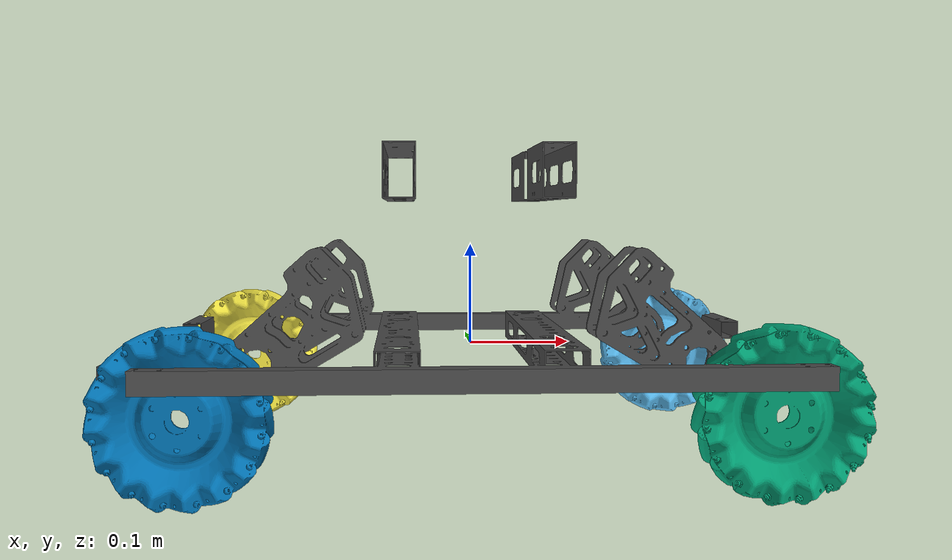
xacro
<robot xmlns:xacro="http://www.ros.org/wiki/xacro">
  <xacro:include filename="$(find rm_description)/urdf/common/mecanum_wheel.urdf.xacro"/>

  <!-- https://upload.wikimedia.org/wikipedia/commons/5/52/Wheelbase_and_Track.png -->
  <xacro:property name="wheel_track" value="0.500"/>
  <xacro:property name="wheel_base" value="0.475"/>
  <xacro:property name="wheel_offset_z" value="-0.036"/>
  <xacro:property name="wheel_joint_damping" value="1.0"/>
  <xacro:property name="wheel_joint_friction" value="1.0"/>

  <link name="base_link">
    <inertial>
      <mass value="10"/>
      <origin xyz="0 0 0"/>
      <inertia ixx="1.013" ixy="1.818e-3" ixz="5.843e-2" iyy="1.516"
               iyz="3.179e-2" izz="2.208"/>
    </inertial>
    <visual>
      <origin xyz="0 0 0" rpy="0 0 0"/>
      <geometry>
        <mesh filename="package://rm_description/meshes/hero/base.stl" scale="0.001 0.001 0.001"/>
      </geometry>
      <material name="DarkGrey"/>
    </visual>
    <collision>
      <origin xyz="0 0 0" rpy="0 0 0"/>
      <geometry>
        <mesh filename="package://rm_description/meshes/hero/base.stl" scale="0.001 0.001 0.001"/>
      </geometry>
    </collision>
  </link>

  <xacro:mecanum_wheel prefix="front_left" parent="base_link"
                       wheel_x_offset="${wheel_track/2}" wheel_y_offset="${wheel_base/2}"
                       wheel_z_offset="${wheel_offset_z}"
                       reflect="1"/>
  <xacro:mecanum_wheel prefix="front_right" parent="base_link"
                       wheel_x_offset="${wheel_track/2}" wheel_y_offset="${-wheel_base/2}"
                       wheel_z_offset="${wheel_offset_z}"
                       reflect="-1"/>
  <xacro:mecanum_wheel prefix="back_left" parent="base_link"
                       wheel_x_offset="${-wheel_track/2}" wheel_y_offset="${wheel_base/2}"
                       wheel_z_offset="${wheel_offset_z}"
                       reflect="-1"/>
  <xacro:mecanum_wheel prefix="back_right" parent="base_link"
                       wheel_x_offset="${-wheel_track/2}" wheel_y_offset="${-wheel_base/2}"
                       wheel_z_offset="${wheel_offset_z}"
                       reflect="1"/>

  <!-- Gazebo plugin for ROS Control -->
  <gazebo>
    <plugin name="gazebo_ros_control" filename="libgazebo_ros_control.so">
      <robotNamespace>/</robotNamespace>
    </plugin>
  </gazebo>

</robot>

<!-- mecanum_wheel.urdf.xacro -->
<robot xmlns:xacro="http://www.ros.org/wiki/xacro">

  <xacro:property name="wheel_radius" value="0.07625"/>
  <xacro:property name="wheel_length" value="0.0269"/>
  <xacro:property name="rotor_radius" value="0.008"/>

  <xacro:macro name="rotor" params="prefix suffix theta">
    <!--  link  -->
    <link name="${prefix}_rotor_${suffix}">
      <collision>
        <!--  still has wrong ration of rotor-->
        <geometry>
          <sphere radius="${rotor_radius}"/>
        </geometry>
      </collision>
      <inertial>
        <mass value="0.036"/>
        <inertia ixx="3128e-9" ixy="-1638.12e-9" ixz="0.0" iyy="3128e-9" iyz="0.0" izz="4766e-9"/>
      </inertial>
      <gazebo>
        <mu1>200</mu1>
        <mu2>200</mu2>
      </gazebo>
    </link>

    <joint name="${prefix}_rotor_${suffix}_joint" type="continuous">
      <origin
          xyz="${(wheel_radius-rotor_radius)*cos(theta-pi/2) * 0.70719678} 0 ${(wheel_radius-rotor_radius)*sin(theta-pi/2) * 0.70719678}"
          rpy="0 0 0"/>
      <axis xyz="${cos(theta) * 0.70719678} ${- reflect * 0.70719678} ${sin(theta) * 0.70719678}"/>
      <parent link="${prefix}_wheel"/>
      <child link="${prefix}_rotor_${suffix}"/>
    </joint>

  </xacro:macro>

  <xacro:macro name="mecanum_wheel" params="prefix parent wheel_x_offset wheel_y_offset wheel_z_offset reflect">
    <!--  link  -->
    <link name="${prefix}_wheel">
      <visual>
        <geometry>
          <xacro:if value="${reflect == 1}">
            <mesh filename="package://rm_description/meshes/common/right_threaded_mecanum_wheel.stl"
                  scale="0.001 0.001 0.001"/>
          </xacro:if>
          <xacro:if value="${reflect == -1}">
            <mesh filename="package://rm_description/meshes/common/left_threaded_mecanum_wheel.stl"
                  scale="0.001 0.001 0.001"/>
          </xacro:if>
        </geometry>
      </visual>
      <inertial>
        <mass value="0.59"/>
        <inertia ixx="1.416e-3" ixy="0.0" ixz="0.0" iyy="2.749e-3" iyz="0.0" izz="1.416e-3"/>
      </inertial>
    </link>

    <!--  joint  -->
    <joint name="${prefix}_wheel_joint" type="continuous">
      <axis xyz="0 1 0"/>
      <origin xyz="${wheel_x_offset} ${wheel_y_offset} ${wheel_offset_z}" rpy="0 0 0"/>
      <dynamics damping="0.1" friction="0.1"/>
      <parent link="${parent}"/>
      <child link="${prefix}_wheel"/>
    </joint>

    <!-- 16 rotor  2pi/16=0.393-->
    <xacro:rotor prefix="${prefix}" suffix="0" theta="${0*0.393}"/>
    <xacro:rotor prefix="${prefix}" suffix="1" theta="${1*0.393}"/>
    <xacro:rotor prefix="${prefix}" suffix="2" theta="${2*0.393}"/>
    <xacro:rotor prefix="${prefix}" suffix="3" theta="${3*0.393}"/>
    <xacro:rotor prefix="${prefix}" suffix="4" theta="${4*0.393}"/>
    <xacro:rotor prefix="${prefix}" suffix="5" theta="${5*0.393}"/>
    <xacro:rotor prefix="${prefix}" suffix="6" theta="${6*0.393}"/>
    <xacro:rotor prefix="${prefix}" suffix="7" theta="${7*0.393}"/>
    <xacro:rotor prefix="${prefix}" suffix="8" theta="${8*0.393}"/>
    <xacro:rotor prefix="${prefix}" suffix="9" theta="${9*0.393}"/>
    <xacro:rotor prefix="${prefix}" suffix="10" theta="${10*0.393}"/>
    <xacro:rotor prefix="${prefix}" suffix="11" theta="${11*0.393}"/>
    <xacro:rotor prefix="${prefix}" suffix="12" theta="${12*0.393}"/>
    <xacro:rotor prefix="${prefix}" suffix="13" theta="${13*0.393}"/>
    <xacro:rotor prefix="${prefix}" suffix="14" theta="${14*0.393}"/>
    <xacro:rotor prefix="${prefix}" suffix="15" theta="${15*0.393}"/>

    <!-- transmission -->
    <transmission name="${prefix}_wheel_trans">
      <type>transmission_interface/SimpleTransmission</type>
      <actuator name="${prefix}_wheel_actuator">
        <hardwareInterface>hardware_interface/EffortJointInterface</hardwareInterface>
        <mechanicalReduction>${reflect}</mechanicalReduction>
      </actuator>
      <joint name="${prefix}_wheel_joint">
        <hardwareInterface>hardware_interface/EffortJointInterface</hardwareInterface>
      </joint>
    </transmission>

  </xacro:macro>

</robot>
